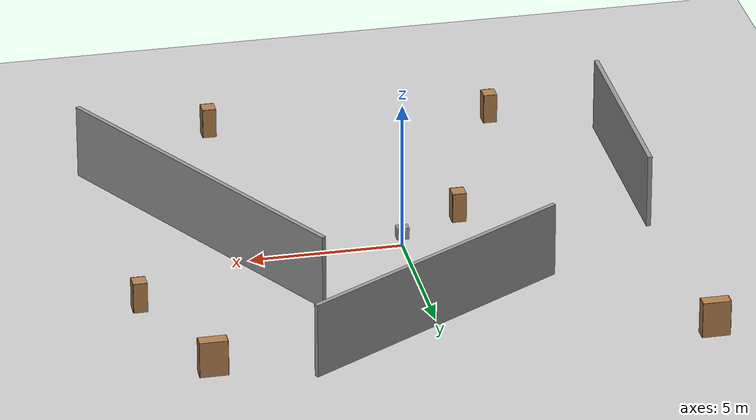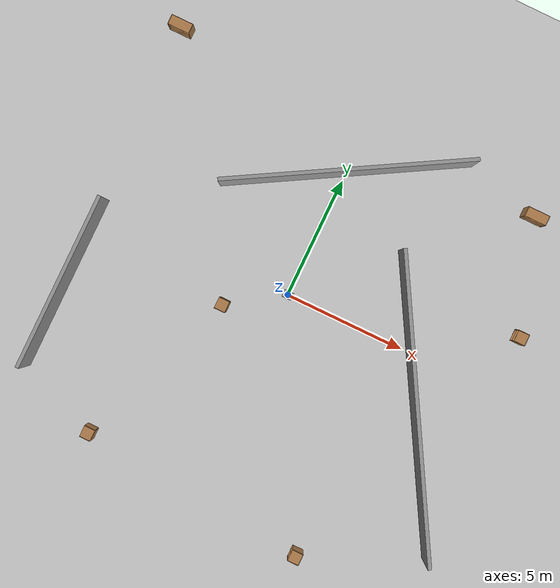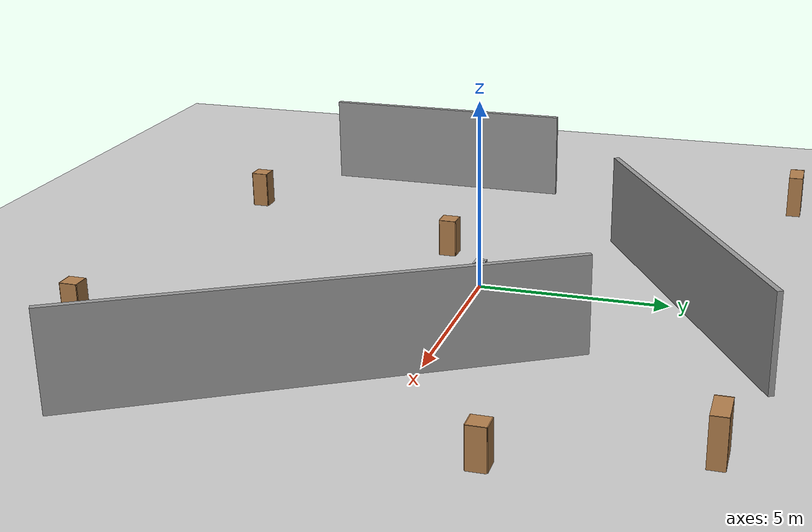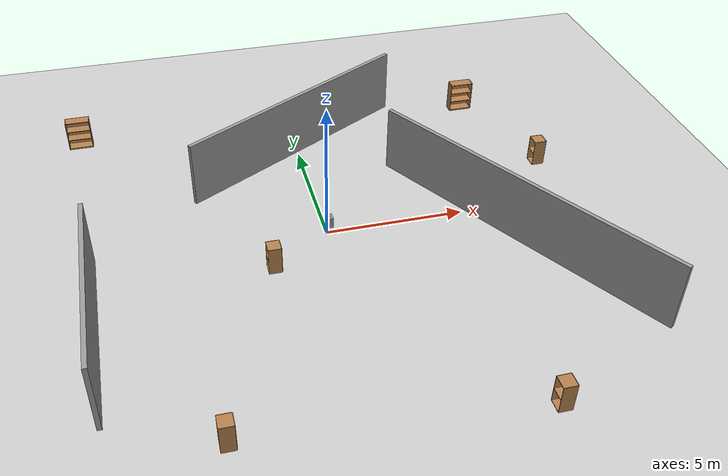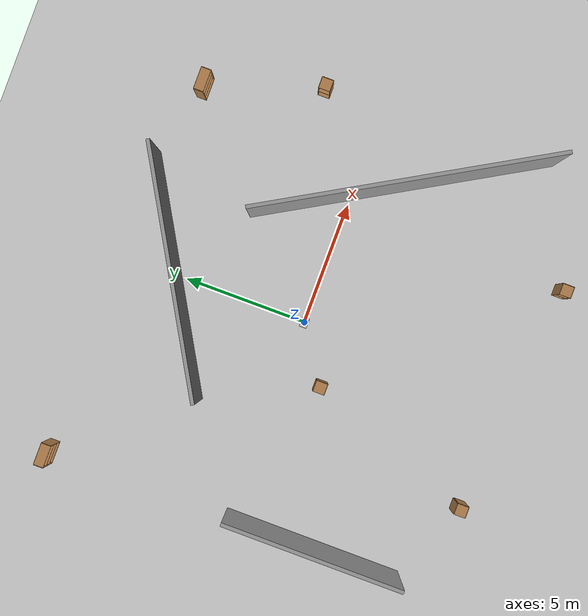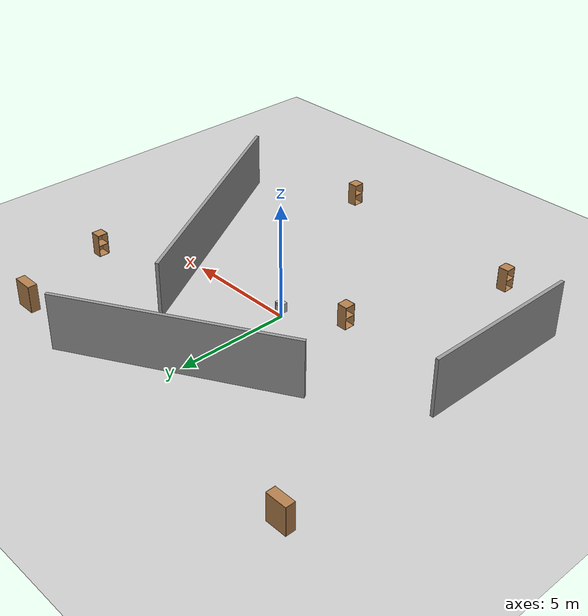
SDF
<sdf version="1.6">
 <world name="default">
  <model name="animated_box">
   <pose>0 0 0.5 0 0 0</pose>
   <link name="link">
    <collision name="animated_box_collision"><geometry><box><size>0.4 0.3 0.4</size></box></geometry></collision>
    <visual name="visual"><geometry><box><size>0.4 0.3 0.4</size></box></geometry></visual>
    <inertial>
     <inertia><ixx>1</ixx><ixy>0</ixy><ixz>0</ixz><iyy>1</iyy><iyz>0</iyz><izz>1</izz></inertia>
     <mass>1</mass>
    </inertial>
    <gravity>0</gravity>
   </link>
   <plugin name="push_animate" filename="libbox_forward_movement12.so"/>
  </model>
  <model name="animated_box2">
   <pose>0 0 0.5 0 0 0</pose>
   <link name="link">
    <collision name="animated_box_collision2"><geometry><box><size>0.2 0.3 0.4</size></box></geometry></collision>
    <visual name="visual"><geometry><box><size>0.2 0.3 0.4</size></box></geometry></visual>
    <inertial>
     <inertia><ixx>1</ixx><ixy>0</ixy><ixz>0</ixz><iyy>1</iyy><iyz>0</iyz><izz>1</izz></inertia>
     <mass>1</mass>
    </inertial>
    <gravity>0</gravity>
   </link>
   <plugin name="push_animate2" filename="libbox_clockwise_movement.so"/>
  </model>
  <model name="animated_box3">
   <pose>0 0 0.5 0 0 0</pose>
   <link name="link">
    <collision name="animated_box_collision3"><geometry><box><size>0.2 0.2 0.4</size></box></geometry></collision>
    <visual name="visual"><geometry><box><size>0.2 0.2 0.4</size></box></geometry></visual>
    <inertial>
     <inertia><ixx>1</ixx><ixy>0</ixy><ixz>0</ixz><iyy>1</iyy><iyz>0</iyz><izz>1</izz></inertia>
     <mass>1</mass>
    </inertial>
    <gravity>0</gravity>
   </link>
   <plugin name="push_animate3" filename="libbox_clockwise_movement2.so"/>
  </model>
  <model name="animated_box4">
   <pose>0 0 0.5 0 0 0</pose>
   <link name="link">
    <collision name="animated_box_collision4"><geometry><box><size>0.2 0.2 0.4</size></box></geometry></collision>
    <visual name="visual"><geometry><box><size>0.2 0.2 0.4</size></box></geometry></visual>
    <inertial>
     <inertia><ixx>1</ixx><ixy>0</ixy><ixz>0</ixz><iyy>1</iyy><iyz>0</iyz><izz>1</izz></inertia>
     <mass>1</mass>
    </inertial>
    <gravity>0</gravity>
   </link>
   <plugin name="push_animate4" filename="libbox_forward_movement16.so"/>
  </model>
  <model name="animated_box5">
   <pose>0 0 0.5 0 0 0</pose>
   <link name="link">
    <collision name="animated_box_collision5"><geometry><box><size>0.3 0.3 0.4</size></box></geometry></collision>
    <visual name="visual"><geometry><box><size>0.3 0.3 0.4</size></box></geometry></visual>
    <inertial>
     <inertia><ixx>1</ixx><ixy>0</ixy><ixz>0</ixz><iyy>1</iyy><iyz>0</iyz><izz>1</izz></inertia>
     <mass>1</mass>
    </inertial>
    <gravity>0</gravity>
   </link>
   <plugin name="push_animate5" filename="libbox_forward_movement18.so"/>
  </model>
  <model name="ground_plane">
   <static>1</static>
   <link name="link">
    <collision name="collision">
     <geometry><plane><normal>0 0 1</normal><size>100 100</size></plane></geometry>
     <surface><friction><ode><mu>100</mu><mu2>50</mu2></ode></friction></surface>
    </collision>
    <visual name="visual">
     <cast_shadows>0</cast_shadows>
     <geometry><plane><normal>0 0 1</normal><size>100 100</size></plane></geometry>
     <material>
      <script><uri>file://media/materials/scripts/gazebo.material</uri><name>Gazebo/Grey</name></script>
     </material>
    </visual>
   </link>
  </model>
  <model name="room7">
   <pose>0.642424 0.37952 0 0 -0 0</pose>
   <link name="Wall_0">
    <collision name="Wall_0_Collision">
     <geometry><box><size>10 0.15 2.5</size></box></geometry>
     <pose>0 0 1.25 0 -0 0</pose>
    </collision>
    <visual name="Wall_0_Visual">
     <pose>0 0 1.25 0 -0 0</pose>
     <geometry><box><size>10 0.15 2.5</size></box></geometry>
     <material>
      <script><uri>file://media/materials/scripts/gazebo.material</uri><name>Gazebo/Grey</name></script>
      <ambient>1 1 1 1</ambient>
     </material>
     <meta><layer>0</layer></meta>
    </visual>
    <pose>-0.625696 4.92862 0 0 -0 0.523599</pose>
   </link>
   <link name="Wall_2">
    <collision name="Wall_2_Collision">
     <geometry><box><size>7.25 0.15 2.5</size></box></geometry>
     <pose>0 0 1.25 0 -0 0</pose>
    </collision>
    <visual name="Wall_2_Visual">
     <pose>0 0 1.25 0 -0 0</pose>
     <geometry><box><size>7.25 0.15 2.5</size></box></geometry>
     <material>
      <script><uri>file://media/materials/scripts/gazebo.material</uri><name>Gazebo/Grey</name></script>
      <ambient>1 1 1 1</ambient>
     </material>
     <meta><layer>0</layer></meta>
    </visual>
    <pose>-8.7229 -3.70024 0 0 -0 -1.5708</pose>
   </link>
   <link name="Wall_5">
    <collision name="Wall_5_Collision">
     <geometry><box><size>12.25 0.15 2.5</size></box></geometry>
     <pose>0 0 1.25 0 -0 0</pose>
    </collision>
    <visual name="Wall_5_Visual">
     <pose>0 0 1.25 0 -0 0</pose>
     <geometry><box><size>12.25 0.15 2.5</size></box></geometry>
     <material>
      <script><uri>file://media/materials/scripts/gazebo.material</uri><name>Gazebo/Grey</name></script>
      <ambient>1 1 1 1</ambient>
     </material>
     <meta><layer>0</layer></meta>
    </visual>
    <pose>5.67045 -2.15167 0 0 -0 2.0944</pose>
   </link>
   <static>1</static>
  </model>
  <model name="bookshelf">
   <static>1</static>
   <link name="link">
    <inertial><mass>1</mass></inertial>
    <collision name="back">
     <pose>0 0.005 0.6 0 -0 0</pose>
     <geometry><box><size>0.9 0.01 1.2</size></box></geometry>
    </collision>
    <visual name="visual1">
     <pose>0 0.005 0.6 0 -0 0</pose>
     <geometry><box><size>0.9 0.01 1.2</size></box></geometry>
     <material>
      <script><uri>file://media/materials/scripts/gazebo.material</uri><name>Gazebo/Wood</name></script>
     </material>
    </visual>
    <collision name="left_side">
     <pose>0.45 -0.195 0.6 0 -0 0</pose>
     <geometry><box><size>0.02 0.4 1.2</size></box></geometry>
    </collision>
    <visual name="visual2">
     <pose>0.45 -0.195 0.6 0 -0 0</pose>
     <geometry><box><size>0.02 0.4 1.2</size></box></geometry>
     <material>
      <script><uri>file://media/materials/scripts/gazebo.material</uri><name>Gazebo/Wood</name></script>
     </material>
    </visual>
    <collision name="right_side">
     <pose>-0.45 -0.195 0.6 0 -0 0</pose>
     <geometry><box><size>0.02 0.4 1.2</size></box></geometry>
    </collision>
    <visual name="visual3">
     <pose>-0.45 -0.195 0.6 0 -0 0</pose>
     <geometry><box><size>0.02 0.4 1.2</size></box></geometry>
     <material>
      <script><uri>file://media/materials/scripts/gazebo.material</uri><name>Gazebo/Wood</name></script>
     </material>
    </visual>
    <collision name="bottom">
     <pose>0 -0.195 0.03 0 -0 0</pose>
     <geometry><box><size>0.88 0.4 0.06</size></box></geometry>
    </collision>
    <visual name="visual4">
     <pose>0 -0.195 0.03 0 -0 0</pose>
     <geometry><box><size>0.88 0.4 0.06</size></box></geometry>
     <material>
      <script><uri>file://media/materials/scripts/gazebo.material</uri><name>Gazebo/Wood</name></script>
     </material>
    </visual>
    <collision name="top">
     <pose>0 -0.195 1.19 0 -0 0</pose>
     <geometry><box><size>0.88 0.4 0.02</size></box></geometry>
    </collision>
    <visual name="visual5">
     <pose>0 -0.195 1.19 0 -0 0</pose>
     <geometry><box><size>0.88 0.4 0.02</size></box></geometry>
     <material>
      <script><uri>file://media/materials/scripts/gazebo.material</uri><name>Gazebo/Wood</name></script>
     </material>
    </visual>
    <collision name="low_shelf">
     <pose>0 -0.195 0.43 0 -0 0</pose>
     <geometry><box><size>0.88 0.4 0.02</size></box></geometry>
    </collision>
    <visual name="visual6">
     <pose>0 -0.195 0.43 0 -0 0</pose>
     <geometry><box><size>0.88 0.4 0.02</size></box></geometry>
     <material>
      <script><uri>file://media/materials/scripts/gazebo.material</uri><name>Gazebo/Wood</name></script>
     </material>
    </visual>
    <collision name="high_shelf">
     <pose>0 -0.195 0.8 0 -0 0</pose>
     <geometry><box><size>0.88 0.4 0.02</size></box></geometry>
    </collision>
    <visual name="visual7">
     <pose>0 -0.195 0.8 0 -0 0</pose>
     <geometry><box><size>0.88 0.4 0.02</size></box></geometry>
     <material>
      <script><uri>file://media/materials/scripts/gazebo.material</uri><name>Gazebo/Wood</name></script>
     </material>
    </visual>
   </link>
   <pose>7.41706 7.16134 0 0 -0 0</pose>
  </model>
  <model name="bookshelf_0">
   <static>1</static>
   <link name="link">
    <inertial><mass>1</mass></inertial>
    <collision name="back">
     <pose>0 0.005 0.6 0 -0 0</pose>
     <geometry><box><size>0.9 0.01 1.2</size></box></geometry>
    </collision>
    <visual name="visual1">
     <pose>0 0.005 0.6 0 -0 0</pose>
     <geometry><box><size>0.9 0.01 1.2</size></box></geometry>
     <material>
      <script><uri>file://media/materials/scripts/gazebo.material</uri><name>Gazebo/Wood</name></script>
     </material>
    </visual>
    <collision name="left_side">
     <pose>0.45 -0.195 0.6 0 -0 0</pose>
     <geometry><box><size>0.02 0.4 1.2</size></box></geometry>
    </collision>
    <visual name="visual2">
     <pose>0.45 -0.195 0.6 0 -0 0</pose>
     <geometry><box><size>0.02 0.4 1.2</size></box></geometry>
     <material>
      <script><uri>file://media/materials/scripts/gazebo.material</uri><name>Gazebo/Wood</name></script>
     </material>
    </visual>
    <collision name="right_side">
     <pose>-0.45 -0.195 0.6 0 -0 0</pose>
     <geometry><box><size>0.02 0.4 1.2</size></box></geometry>
    </collision>
    <visual name="visual3">
     <pose>-0.45 -0.195 0.6 0 -0 0</pose>
     <geometry><box><size>0.02 0.4 1.2</size></box></geometry>
     <material>
      <script><uri>file://media/materials/scripts/gazebo.material</uri><name>Gazebo/Wood</name></script>
     </material>
    </visual>
    <collision name="bottom">
     <pose>0 -0.195 0.03 0 -0 0</pose>
     <geometry><box><size>0.88 0.4 0.06</size></box></geometry>
    </collision>
    <visual name="visual4">
     <pose>0 -0.195 0.03 0 -0 0</pose>
     <geometry><box><size>0.88 0.4 0.06</size></box></geometry>
     <material>
      <script><uri>file://media/materials/scripts/gazebo.material</uri><name>Gazebo/Wood</name></script>
     </material>
    </visual>
    <collision name="top">
     <pose>0 -0.195 1.19 0 -0 0</pose>
     <geometry><box><size>0.88 0.4 0.02</size></box></geometry>
    </collision>
    <visual name="visual5">
     <pose>0 -0.195 1.19 0 -0 0</pose>
     <geometry><box><size>0.88 0.4 0.02</size></box></geometry>
     <material>
      <script><uri>file://media/materials/scripts/gazebo.material</uri><name>Gazebo/Wood</name></script>
     </material>
    </visual>
    <collision name="low_shelf">
     <pose>0 -0.195 0.43 0 -0 0</pose>
     <geometry><box><size>0.88 0.4 0.02</size></box></geometry>
    </collision>
    <visual name="visual6">
     <pose>0 -0.195 0.43 0 -0 0</pose>
     <geometry><box><size>0.88 0.4 0.02</size></box></geometry>
     <material>
      <script><uri>file://media/materials/scripts/gazebo.material</uri><name>Gazebo/Wood</name></script>
     </material>
    </visual>
    <collision name="high_shelf">
     <pose>0 -0.195 0.8 0 -0 0</pose>
     <geometry><box><size>0.88 0.4 0.02</size></box></geometry>
    </collision>
    <visual name="visual7">
     <pose>0 -0.195 0.8 0 -0 0</pose>
     <geometry><box><size>0.88 0.4 0.02</size></box></geometry>
     <material>
      <script><uri>file://media/materials/scripts/gazebo.material</uri><name>Gazebo/Wood</name></script>
     </material>
    </visual>
   </link>
   <pose>-8.32761 7.88049 0 0 -0 0</pose>
  </model>
  <model name="cabinet">
   <static>1</static>
   <link name="cabinet_bottom_plate">
    <inertial>
     <pose>0 0 -1 0 -0 0</pose>
     <inertia><ixx>2.05</ixx><ixy>0</ixy><ixz>0</ixz><iyy>2.05</iyy><iyz>0</iyz><izz>2.05</izz></inertia>
     <mass>25</mass>
    </inertial>
    <collision name="cabinet_bottom_plate_geom">
     <pose>0 0 0.01 0 -0 0</pose>
     <geometry><box><size>0.45 0.45 0.02</size></box></geometry>
    </collision>
    <visual name="cabinet_bottom_plate_geom_visual">
     <pose>0 0 0.01 0 -0 0</pose>
     <geometry><box><size>0.45 0.45 0.02</size></box></geometry>
     <material>
      <script><uri>file://media/materials/scripts/gazebo.material</uri><name>Gazebo/Wood</name></script>
     </material>
    </visual>
    <collision name="cabinet_bottom_plate_geom_cabinet_back_plate">
     <pose>0.235 0 0.51 0 -0 0</pose>
     <geometry><box><size>0.02 0.45 1.02</size></box></geometry>
    </collision>
    <visual name="cabinet_bottom_plate_geom_cabinet_back_plate_visual">
     <pose>0.235 0 0.51 0 -0 0</pose>
     <geometry><box><size>0.02 0.45 1.02</size></box></geometry>
     <material>
      <script><uri>file://media/materials/scripts/gazebo.material</uri><name>Gazebo/Wood</name></script>
     </material>
    </visual>
    <collision name="cabinet_bottom_plate_geom_cabinet_left_plate">
     <pose>0 0.235 0.51 0 -0 0</pose>
     <geometry><box><size>0.45 0.02 1.02</size></box></geometry>
    </collision>
    <visual name="cabinet_bottom_plate_geom_cabinet_left_plate_visual">
     <pose>0 0.235 0.51 0 -0 0</pose>
     <geometry><box><size>0.45 0.02 1.02</size></box></geometry>
     <material>
      <script><uri>file://media/materials/scripts/gazebo.material</uri><name>Gazebo/Wood</name></script>
     </material>
    </visual>
    <collision name="cabinet_bottom_plate_geom_cabinet_middle_plate">
     <pose>0 0 0.51 0 -0 0</pose>
     <geometry><box><size>0.45 0.45 0.02</size></box></geometry>
    </collision>
    <visual name="cabinet_bottom_plate_geom_cabinet_middle_plate_visual">
     <pose>0 0 0.51 0 -0 0</pose>
     <geometry><box><size>0.45 0.45 0.02</size></box></geometry>
     <material>
      <script><uri>file://media/materials/scripts/gazebo.material</uri><name>Gazebo/Wood</name></script>
     </material>
    </visual>
    <collision name="cabinet_bottom_plate_geom_cabinet_right_plate">
     <pose>0 -0.235 0.51 0 -0 0</pose>
     <geometry><box><size>0.45 0.02 1.02</size></box></geometry>
    </collision>
    <visual name="cabinet_bottom_plate_geom_cabinet_right_plate_visual">
     <pose>0 -0.235 0.51 0 -0 0</pose>
     <geometry><box><size>0.45 0.02 1.02</size></box></geometry>
     <material>
      <script><uri>file://media/materials/scripts/gazebo.material</uri><name>Gazebo/Wood</name></script>
     </material>
    </visual>
    <collision name="cabinet_bottom_plate_geom_cabinet_top_plate">
     <pose>0 0 1.01 0 -0 0</pose>
     <geometry><box><size>0.45 0.45 0.02</size></box></geometry>
    </collision>
    <visual name="cabinet_bottom_plate_geom_cabinet_top_plate_visual">
     <pose>0 0 1.01 0 -0 0</pose>
     <geometry><box><size>0.45 0.45 0.02</size></box></geometry>
     <material>
      <script><uri>file://media/materials/scripts/gazebo.material</uri><name>Gazebo/Wood</name></script>
     </material>
    </visual>
   </link>
   <pose>8.95242 2.4355 0 0 -0 0</pose>
  </model>
  <model name="cabinet_0">
   <static>1</static>
   <link name="cabinet_bottom_plate">
    <inertial>
     <pose>0 0 -1 0 -0 0</pose>
     <inertia><ixx>2.05</ixx><ixy>0</ixy><ixz>0</ixz><iyy>2.05</iyy><iyz>0</iyz><izz>2.05</izz></inertia>
     <mass>25</mass>
    </inertial>
    <collision name="cabinet_bottom_plate_geom">
     <pose>0 0 0.01 0 -0 0</pose>
     <geometry><box><size>0.45 0.45 0.02</size></box></geometry>
    </collision>
    <visual name="cabinet_bottom_plate_geom_visual">
     <pose>0 0 0.01 0 -0 0</pose>
     <geometry><box><size>0.45 0.45 0.02</size></box></geometry>
     <material>
      <script><uri>file://media/materials/scripts/gazebo.material</uri><name>Gazebo/Wood</name></script>
     </material>
    </visual>
    <collision name="cabinet_bottom_plate_geom_cabinet_back_plate">
     <pose>0.235 0 0.51 0 -0 0</pose>
     <geometry><box><size>0.02 0.45 1.02</size></box></geometry>
    </collision>
    <visual name="cabinet_bottom_plate_geom_cabinet_back_plate_visual">
     <pose>0.235 0 0.51 0 -0 0</pose>
     <geometry><box><size>0.02 0.45 1.02</size></box></geometry>
     <material>
      <script><uri>file://media/materials/scripts/gazebo.material</uri><name>Gazebo/Wood</name></script>
     </material>
    </visual>
    <collision name="cabinet_bottom_plate_geom_cabinet_left_plate">
     <pose>0 0.235 0.51 0 -0 0</pose>
     <geometry><box><size>0.45 0.02 1.02</size></box></geometry>
    </collision>
    <visual name="cabinet_bottom_plate_geom_cabinet_left_plate_visual">
     <pose>0 0.235 0.51 0 -0 0</pose>
     <geometry><box><size>0.45 0.02 1.02</size></box></geometry>
     <material>
      <script><uri>file://media/materials/scripts/gazebo.material</uri><name>Gazebo/Wood</name></script>
     </material>
    </visual>
    <collision name="cabinet_bottom_plate_geom_cabinet_middle_plate">
     <pose>0 0 0.51 0 -0 0</pose>
     <geometry><box><size>0.45 0.45 0.02</size></box></geometry>
    </collision>
    <visual name="cabinet_bottom_plate_geom_cabinet_middle_plate_visual">
     <pose>0 0 0.51 0 -0 0</pose>
     <geometry><box><size>0.45 0.45 0.02</size></box></geometry>
     <material>
      <script><uri>file://media/materials/scripts/gazebo.material</uri><name>Gazebo/Wood</name></script>
     </material>
    </visual>
    <collision name="cabinet_bottom_plate_geom_cabinet_right_plate">
     <pose>0 -0.235 0.51 0 -0 0</pose>
     <geometry><box><size>0.45 0.02 1.02</size></box></geometry>
    </collision>
    <visual name="cabinet_bottom_plate_geom_cabinet_right_plate_visual">
     <pose>0 -0.235 0.51 0 -0 0</pose>
     <geometry><box><size>0.45 0.02 1.02</size></box></geometry>
     <material>
      <script><uri>file://media/materials/scripts/gazebo.material</uri><name>Gazebo/Wood</name></script>
     </material>
    </visual>
    <collision name="cabinet_bottom_plate_geom_cabinet_top_plate">
     <pose>0 0 1.01 0 -0 0</pose>
     <geometry><box><size>0.45 0.45 0.02</size></box></geometry>
    </collision>
    <visual name="cabinet_bottom_plate_geom_cabinet_top_plate_visual">
     <pose>0 0 1.01 0 -0 0</pose>
     <geometry><box><size>0.45 0.45 0.02</size></box></geometry>
     <material>
      <script><uri>file://media/materials/scripts/gazebo.material</uri><name>Gazebo/Wood</name></script>
     </material>
    </visual>
   </link>
   <pose>-4.71811 -8.25664 0 0 -0 0</pose>
  </model>
  <model name="cabinet_1">
   <static>1</static>
   <link name="cabinet_bottom_plate">
    <inertial>
     <pose>0 0 -1 0 -0 0</pose>
     <inertia><ixx>2.05</ixx><ixy>0</ixy><ixz>0</ixz><iyy>2.05</iyy><iyz>0</iyz><izz>2.05</izz></inertia>
     <mass>25</mass>
    </inertial>
    <collision name="cabinet_bottom_plate_geom">
     <pose>0 0 0.01 0 -0 0</pose>
     <geometry><box><size>0.45 0.45 0.02</size></box></geometry>
    </collision>
    <visual name="cabinet_bottom_plate_geom_visual">
     <pose>0 0 0.01 0 -0 0</pose>
     <geometry><box><size>0.45 0.45 0.02</size></box></geometry>
     <material>
      <script><uri>file://media/materials/scripts/gazebo.material</uri><name>Gazebo/Wood</name></script>
     </material>
    </visual>
    <collision name="cabinet_bottom_plate_geom_cabinet_back_plate">
     <pose>0.235 0 0.51 0 -0 0</pose>
     <geometry><box><size>0.02 0.45 1.02</size></box></geometry>
    </collision>
    <visual name="cabinet_bottom_plate_geom_cabinet_back_plate_visual">
     <pose>0.235 0 0.51 0 -0 0</pose>
     <geometry><box><size>0.02 0.45 1.02</size></box></geometry>
     <material>
      <script><uri>file://media/materials/scripts/gazebo.material</uri><name>Gazebo/Wood</name></script>
     </material>
    </visual>
    <collision name="cabinet_bottom_plate_geom_cabinet_left_plate">
     <pose>0 0.235 0.51 0 -0 0</pose>
     <geometry><box><size>0.45 0.02 1.02</size></box></geometry>
    </collision>
    <visual name="cabinet_bottom_plate_geom_cabinet_left_plate_visual">
     <pose>0 0.235 0.51 0 -0 0</pose>
     <geometry><box><size>0.45 0.02 1.02</size></box></geometry>
     <material>
      <script><uri>file://media/materials/scripts/gazebo.material</uri><name>Gazebo/Wood</name></script>
     </material>
    </visual>
    <collision name="cabinet_bottom_plate_geom_cabinet_middle_plate">
     <pose>0 0 0.51 0 -0 0</pose>
     <geometry><box><size>0.45 0.45 0.02</size></box></geometry>
    </collision>
    <visual name="cabinet_bottom_plate_geom_cabinet_middle_plate_visual">
     <pose>0 0 0.51 0 -0 0</pose>
     <geometry><box><size>0.45 0.45 0.02</size></box></geometry>
     <material>
      <script><uri>file://media/materials/scripts/gazebo.material</uri><name>Gazebo/Wood</name></script>
     </material>
    </visual>
    <collision name="cabinet_bottom_plate_geom_cabinet_right_plate">
     <pose>0 -0.235 0.51 0 -0 0</pose>
     <geometry><box><size>0.45 0.02 1.02</size></box></geometry>
    </collision>
    <visual name="cabinet_bottom_plate_geom_cabinet_right_plate_visual">
     <pose>0 -0.235 0.51 0 -0 0</pose>
     <geometry><box><size>0.45 0.02 1.02</size></box></geometry>
     <material>
      <script><uri>file://media/materials/scripts/gazebo.material</uri><name>Gazebo/Wood</name></script>
     </material>
    </visual>
    <collision name="cabinet_bottom_plate_geom_cabinet_top_plate">
     <pose>0 0 1.01 0 -0 0</pose>
     <geometry><box><size>0.45 0.45 0.02</size></box></geometry>
    </collision>
    <visual name="cabinet_bottom_plate_geom_cabinet_top_plate_visual">
     <pose>0 0 1.01 0 -0 0</pose>
     <geometry><box><size>0.45 0.45 0.02</size></box></geometry>
     <material>
      <script><uri>file://media/materials/scripts/gazebo.material</uri><name>Gazebo/Wood</name></script>
     </material>
    </visual>
   </link>
   <pose>4.69977 -9.10999 0 0 -0 0</pose>
  </model>
  <model name="cabinet_2">
   <static>1</static>
   <link name="cabinet_bottom_plate">
    <inertial>
     <pose>0 0 -1 0 -0 0</pose>
     <inertia><ixx>2.05</ixx><ixy>0</ixy><ixz>0</ixz><iyy>2.05</iyy><iyz>0</iyz><izz>2.05</izz></inertia>
     <mass>25</mass>
    </inertial>
    <collision name="cabinet_bottom_plate_geom">
     <pose>0 0 0.01 0 -0 0</pose>
     <geometry><box><size>0.45 0.45 0.02</size></box></geometry>
    </collision>
    <visual name="cabinet_bottom_plate_geom_visual">
     <pose>0 0 0.01 0 -0 0</pose>
     <geometry><box><size>0.45 0.45 0.02</size></box></geometry>
     <material>
      <script><uri>file://media/materials/scripts/gazebo.material</uri><name>Gazebo/Wood</name></script>
     </material>
    </visual>
    <collision name="cabinet_bottom_plate_geom_cabinet_back_plate">
     <pose>0.235 0 0.51 0 -0 0</pose>
     <geometry><box><size>0.02 0.45 1.02</size></box></geometry>
    </collision>
    <visual name="cabinet_bottom_plate_geom_cabinet_back_plate_visual">
     <pose>0.235 0 0.51 0 -0 0</pose>
     <geometry><box><size>0.02 0.45 1.02</size></box></geometry>
     <material>
      <script><uri>file://media/materials/scripts/gazebo.material</uri><name>Gazebo/Wood</name></script>
     </material>
    </visual>
    <collision name="cabinet_bottom_plate_geom_cabinet_left_plate">
     <pose>0 0.235 0.51 0 -0 0</pose>
     <geometry><box><size>0.45 0.02 1.02</size></box></geometry>
    </collision>
    <visual name="cabinet_bottom_plate_geom_cabinet_left_plate_visual">
     <pose>0 0.235 0.51 0 -0 0</pose>
     <geometry><box><size>0.45 0.02 1.02</size></box></geometry>
     <material>
      <script><uri>file://media/materials/scripts/gazebo.material</uri><name>Gazebo/Wood</name></script>
     </material>
    </visual>
    <collision name="cabinet_bottom_plate_geom_cabinet_middle_plate">
     <pose>0 0 0.51 0 -0 0</pose>
     <geometry><box><size>0.45 0.45 0.02</size></box></geometry>
    </collision>
    <visual name="cabinet_bottom_plate_geom_cabinet_middle_plate_visual">
     <pose>0 0 0.51 0 -0 0</pose>
     <geometry><box><size>0.45 0.45 0.02</size></box></geometry>
     <material>
      <script><uri>file://media/materials/scripts/gazebo.material</uri><name>Gazebo/Wood</name></script>
     </material>
    </visual>
    <collision name="cabinet_bottom_plate_geom_cabinet_right_plate">
     <pose>0 -0.235 0.51 0 -0 0</pose>
     <geometry><box><size>0.45 0.02 1.02</size></box></geometry>
    </collision>
    <visual name="cabinet_bottom_plate_geom_cabinet_right_plate_visual">
     <pose>0 -0.235 0.51 0 -0 0</pose>
     <geometry><box><size>0.45 0.02 1.02</size></box></geometry>
     <material>
      <script><uri>file://media/materials/scripts/gazebo.material</uri><name>Gazebo/Wood</name></script>
     </material>
    </visual>
    <collision name="cabinet_bottom_plate_geom_cabinet_top_plate">
     <pose>0 0 1.01 0 -0 0</pose>
     <geometry><box><size>0.45 0.45 0.02</size></box></geometry>
    </collision>
    <visual name="cabinet_bottom_plate_geom_cabinet_top_plate_visual">
     <pose>0 0 1.01 0 -0 0</pose>
     <geometry><box><size>0.45 0.45 0.02</size></box></geometry>
     <material>
      <script><uri>file://media/materials/scripts/gazebo.material</uri><name>Gazebo/Wood</name></script>
     </material>
    </visual>
   </link>
   <pose>-2.15563 -1.46111 0 0 -0 0</pose>
  </model>
 </world>
</sdf>
